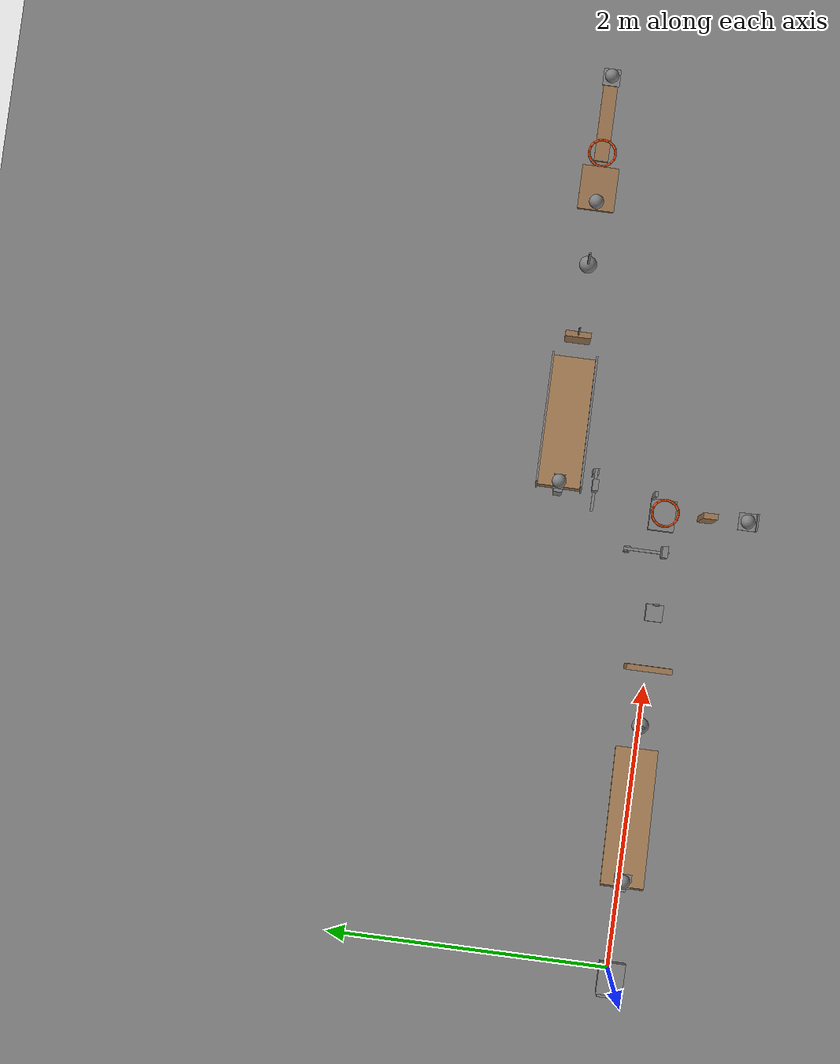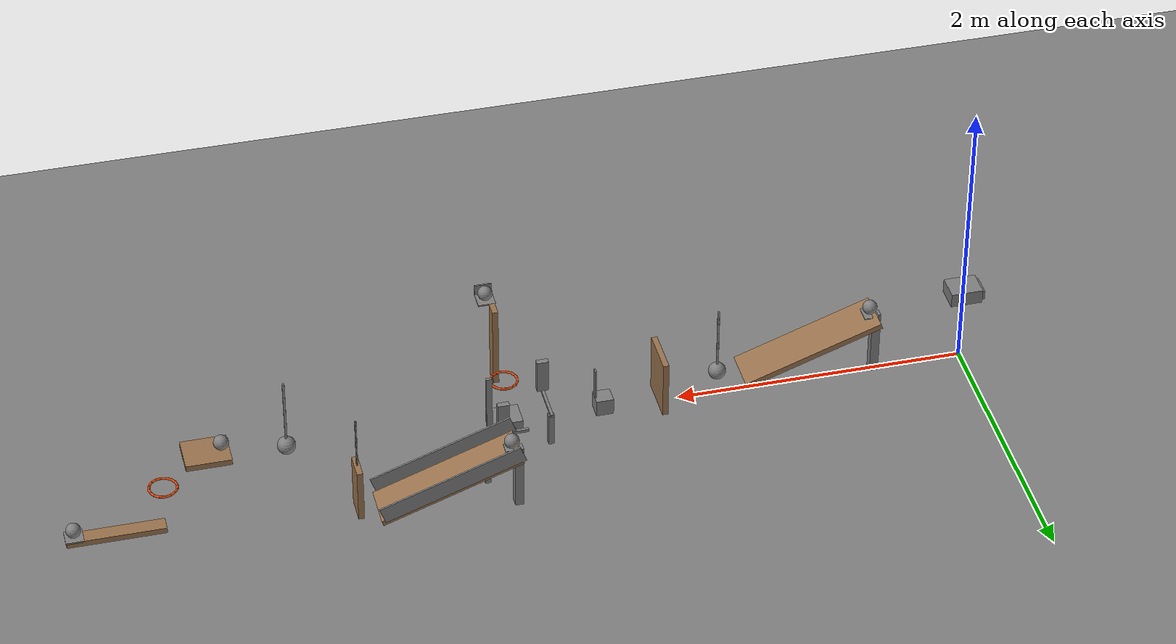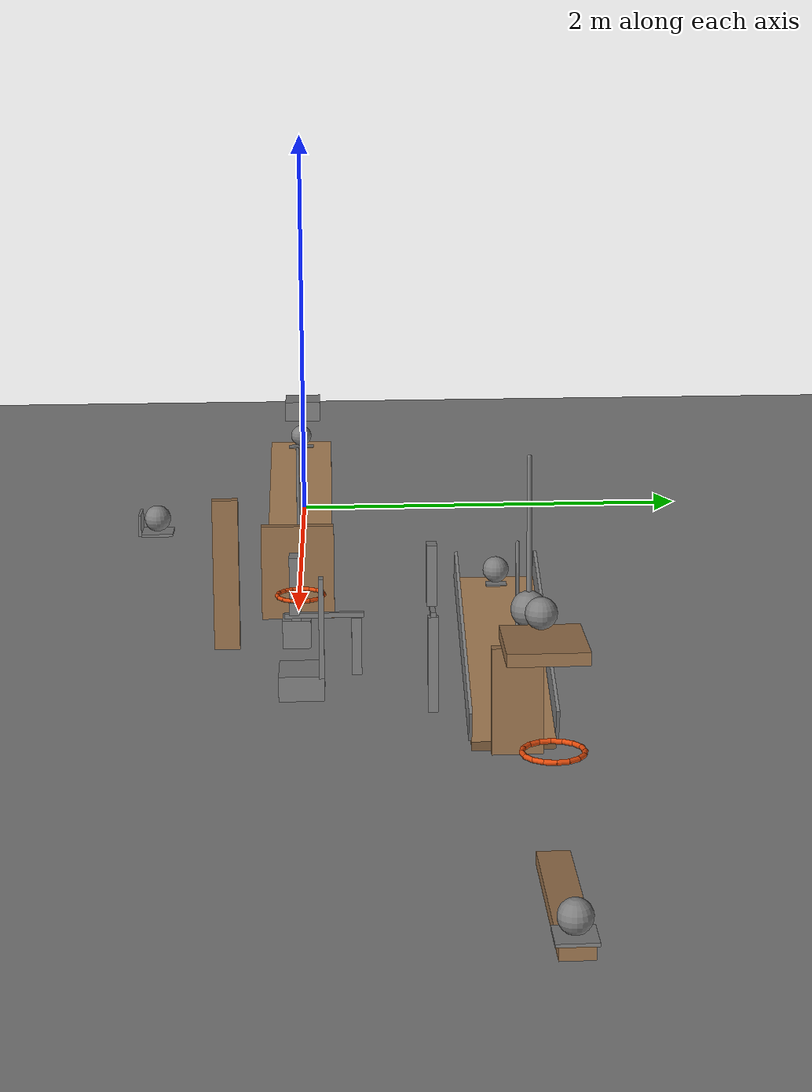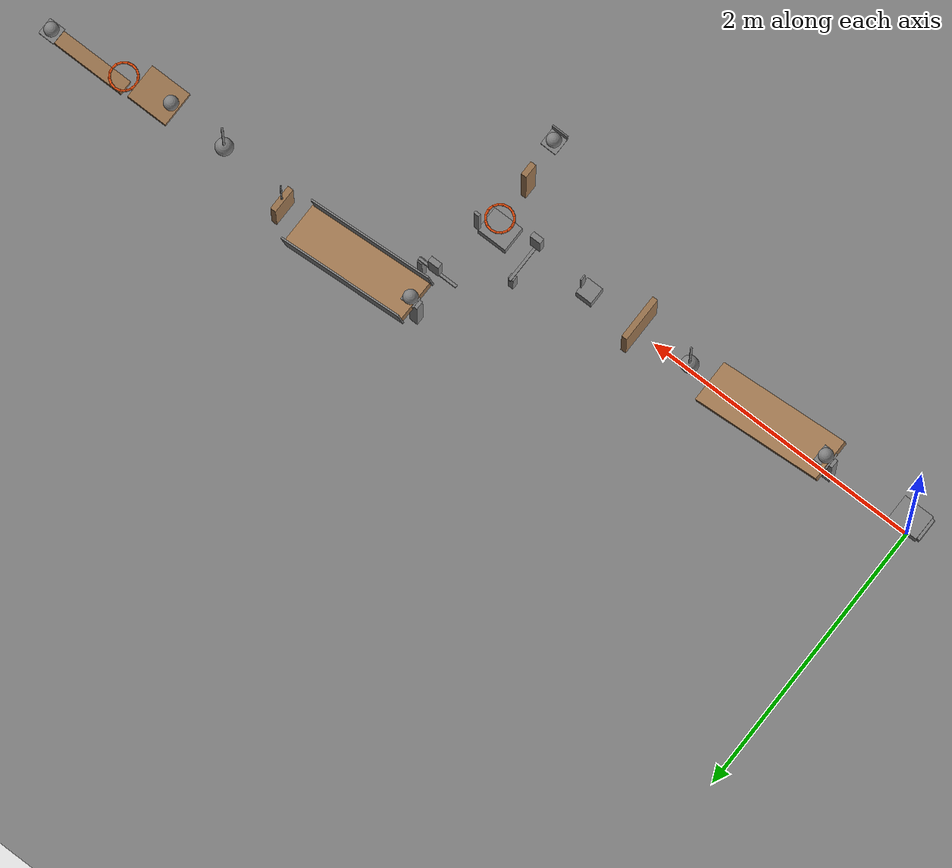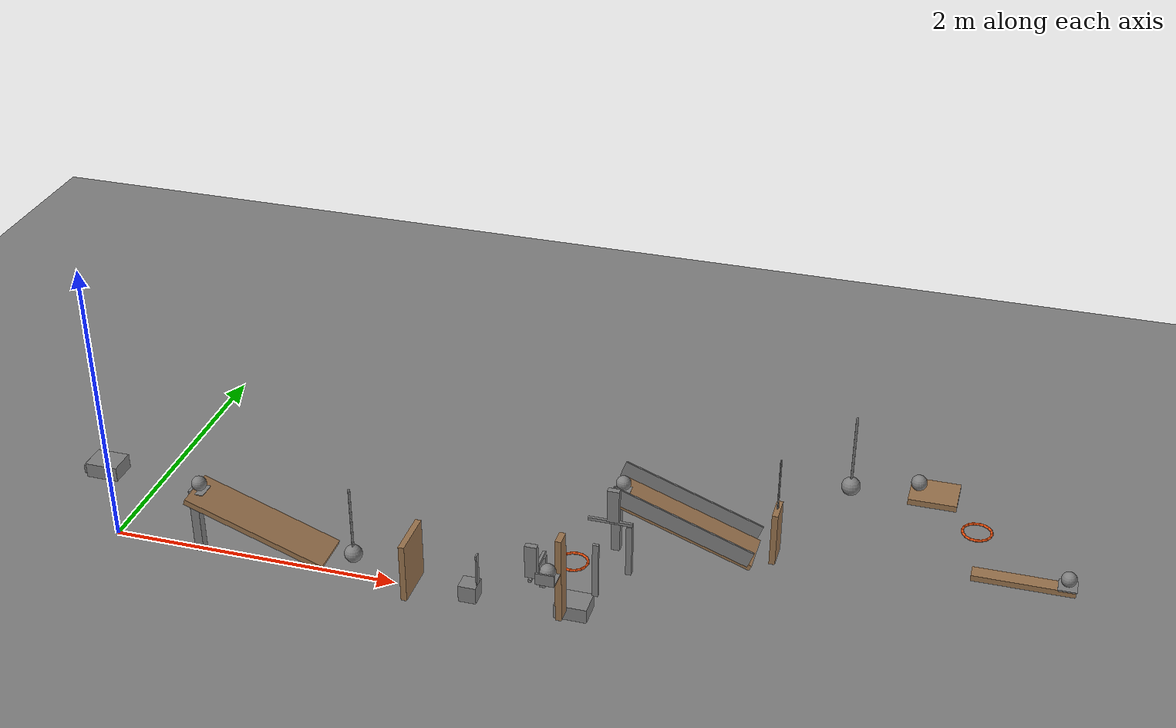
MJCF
<mujoco model="passive_cascade_approximation">
  <compiler angle="radian"/>
  <option timestep="0.002"/>
  <worldbody>
    <geom name="floor" type="plane" size="16 16 0.1" friction="0.68 0 0"/>
    <body name="cart1" pos="0 0 100.549">
      <joint name="cart1_guide" type="hinge" pos="0 0 0" axis="0 1 0" limited="true" range="-0.00610865 0" damping="2000"/>
      <geom name="cart1" type="box" pos="0 0 -100" size="0.11 0.09 0.05" mass="0.5" friction="0.68 0 0" solref="0.01 1"/>
    </body>
    <body name="cart1 spring pusher" pos="-0.12 0 1.54875">
      <joint name="cart1_spring_hinge" type="hinge" pos="0 0 0" axis="0 1 0" limited="true" range="-0.201358 0" stiffness="18" springref="-0.201358" damping="0.04"/>
      <geom name="cart1 spring pusher" type="box" pos="0 0 -1" size="0.01 0.08 0.03" mass="0.005" friction="0.68 0 0" solref="0.01 1"/>
    </body>
    <body name="ramp1">
      <geom name="ramp1" type="box" pos="1.08711 0 0.302216" size="0.5 0.15 0.02" euler="0 0.349066 0" friction="0.68 0 0" solref="0.01 1" rgba="0.6 0.45 0.3 1"/>
    </body>
    <body name="ramp1 support">
      <geom name="ramp1 support" type="box" pos="0.617265 0 0.236613" size="0.03 0.03 0.236613" friction="0.68 0.005 0.0001" solref="0.01 1"/>
    </body>
    <body name="ball1 holding patch">
      <geom name="ball1 holding patch" type="box" pos="0.66 0 0.479664" size="0.05 0.06 0.0025" friction="0.68 0 0" solref="0.01 1"/>
    </body>
    <body name="ball1" pos="0.66 0 0.532164">
      <freejoint/>
      <geom name="ball1" type="sphere" pos="0 0 0" size="0.05" mass="0.2" condim="6" friction="0.68 0 0" solref="0.01 1"/>
    </body>
    <body name="pendulum1" pos="1.7238 0 0.685">
      <joint name="pendulum1_hinge" type="hinge" pos="0 0 0" axis="0 1 0" limited="true" range="-0.698132 0" damping="0.04"/>
      <geom name="pendulum1" type="sphere" pos="0 0 -0.5" size="0.06" mass="0.3" friction="0.68 0 0" solref="0.01 1"/>
      <geom name="pendulum1 rod" type="capsule" size="0.008" fromto="0 0 0 0 0 -0.44" mass="0.05" friction="0.68 0 0" solref="0.01 1"/>
    </body>
    <body name="door1" pos="2.12519 0 0.005">
      <joint name="door1_hinge" type="hinge" pos="0 0 0" axis="0 1 0" limited="true" range="0 1.22173" damping="0.04"/>
      <geom name="door1" type="box" pos="0 0 0.21" size="0.02 0.16 0.21" mass="0.45" friction="0.68 0 0" solref="0.01 1" rgba="0.6 0.45 0.3 1"/>
    </body>
    <body name="block1" pos="2.52019 0 0.06">
      <freejoint/>
      <geom name="block1" type="box" pos="0 0 0" size="0.06 0.06 0.06" mass="0.34" friction="0.68 0 0" solref="0.01 1"/>
      <geom name="block1 striker" type="box" pos="0.055 0 0.175" size="0.005 0.02 0.115" mass="0.01" friction="0.68 0 0" solref="0.01 1"/>
    </body>
    <body name="domino1 platform post">
      <geom name="domino1 platform post" type="box" pos="2.94019 0.25 0.12" size="0.02 0.02 0.12" friction="0.68 0.005 0.0001" solref="0.01 1"/>
    </body>
    <body name="domino1 platform">
      <geom name="domino1 platform" type="box" pos="2.94019 0.12 0.25" size="0.01 0.16 0.01" friction="0.68 0 0" solref="0.01 1"/>
    </body>
    <body name="domino1" pos="2.94019 0 0.38">
      <freejoint/>
      <geom name="domino1" type="box" pos="0 0 0" size="0.04 0.02 0.12" mass="0.25" friction="0.68 0 0" solref="0.01 1"/>
    </body>
    <body name="lever1" pos="3.21019 -0.259808 0.5">
      <joint name="lever1_hinge" type="hinge" pos="0 0 0" axis="1 0 0" limited="true" range="-0.785398 0" damping="0.04"/>
      <geom name="lever1" type="box" pos="0 0 0" size="0.3 0.05 0.02" euler="0 -1.5708 0" mass="0.49" friction="0.68 0 0" solref="0.01 1" rgba="0.6 0.45 0.3 1"/>
      <geom name="lever1 scoop base" type="box" pos="0 -0.259808 0.175" size="0.06 0.06 0.005" mass="0.005" friction="0.68 0 0" solref="0.01 1"/>
      <geom name="lever1 scoop back" type="box" pos="0 -0.324807 0.215" size="0.06 0.005 0.04" mass="0.005" friction="0.68 0 0" solref="0.01 1"/>
    </body>
    <body name="ball2" pos="3.21019 -0.519615 0.73">
      <freejoint/>
      <geom name="ball2" type="sphere" pos="0 0 0" size="0.05" mass="0.2" condim="6" friction="0.68 0 0" solref="0.01 1"/>
    </body>
    <body name="ring1">
      <geom name="ring1_00" type="capsule" size="0.008" fromto="3.30219 0.03 0.41 3.29519 0.0652069 0.41" friction="0.68 0 0" solref="0.01 1" rgba="0.9 0.3 0.05 1"/>
      <geom name="ring1_01" type="capsule" size="0.008" fromto="3.29519 0.0652069 0.41 3.27525 0.0950538 0.41" friction="0.68 0 0" solref="0.01 1" rgba="0.9 0.3 0.05 1"/>
      <geom name="ring1_02" type="capsule" size="0.008" fromto="3.27525 0.0950538 0.41 3.2454 0.114997 0.41" friction="0.68 0 0" solref="0.01 1" rgba="0.9 0.3 0.05 1"/>
      <geom name="ring1_03" type="capsule" size="0.008" fromto="3.2454 0.114997 0.41 3.21019 0.122 0.41" friction="0.68 0 0" solref="0.01 1" rgba="0.9 0.3 0.05 1"/>
      <geom name="ring1_04" type="capsule" size="0.008" fromto="3.21019 0.122 0.41 3.17499 0.114997 0.41" friction="0.68 0 0" solref="0.01 1" rgba="0.9 0.3 0.05 1"/>
      <geom name="ring1_05" type="capsule" size="0.008" fromto="3.17499 0.114997 0.41 3.14514 0.0950538 0.41" friction="0.68 0 0" solref="0.01 1" rgba="0.9 0.3 0.05 1"/>
      <geom name="ring1_06" type="capsule" size="0.008" fromto="3.14514 0.0950538 0.41 3.1252 0.0652069 0.41" friction="0.68 0 0" solref="0.01 1" rgba="0.9 0.3 0.05 1"/>
      <geom name="ring1_07" type="capsule" size="0.008" fromto="3.1252 0.0652069 0.41 3.11819 0.03 0.41" friction="0.68 0 0" solref="0.01 1" rgba="0.9 0.3 0.05 1"/>
      <geom name="ring1_08" type="capsule" size="0.008" fromto="3.11819 0.03 0.41 3.1252 -0.00520688 0.41" friction="0.68 0 0" solref="0.01 1" rgba="0.9 0.3 0.05 1"/>
      <geom name="ring1_09" type="capsule" size="0.008" fromto="3.1252 -0.00520688 0.41 3.14514 -0.0350538 0.41" friction="0.68 0 0" solref="0.01 1" rgba="0.9 0.3 0.05 1"/>
      <geom name="ring1_10" type="capsule" size="0.008" fromto="3.14514 -0.0350538 0.41 3.17499 -0.0549969 0.41" friction="0.68 0 0" solref="0.01 1" rgba="0.9 0.3 0.05 1"/>
      <geom name="ring1_11" type="capsule" size="0.008" fromto="3.17499 -0.0549969 0.41 3.21019 -0.062 0.41" friction="0.68 0 0" solref="0.01 1" rgba="0.9 0.3 0.05 1"/>
      <geom name="ring1_12" type="capsule" size="0.008" fromto="3.21019 -0.062 0.41 3.2454 -0.0549969 0.41" friction="0.68 0 0" solref="0.01 1" rgba="0.9 0.3 0.05 1"/>
      <geom name="ring1_13" type="capsule" size="0.008" fromto="3.2454 -0.0549969 0.41 3.27525 -0.0350538 0.41" friction="0.68 0 0" solref="0.01 1" rgba="0.9 0.3 0.05 1"/>
      <geom name="ring1_14" type="capsule" size="0.008" fromto="3.27525 -0.0350538 0.41 3.29519 -0.00520688 0.41" friction="0.68 0 0" solref="0.01 1" rgba="0.9 0.3 0.05 1"/>
      <geom name="ring1_15" type="capsule" size="0.008" fromto="3.29519 -0.00520688 0.41 3.30219 0.03 0.41" friction="0.68 0 0" solref="0.01 1" rgba="0.9 0.3 0.05 1"/>
    </body>
    <body name="cart2" pos="3.21019 0.03 100.06">
      <joint name="cart2_guide" type="hinge" pos="0 0 0" axis="1 0 0" limited="true" range="0 0.00610865" damping="2000"/>
      <geom name="cart2" type="box" pos="0 0 -100" size="0.11 0.09 0.05" mass="0.49" friction="0.68 0 0" solref="0.01 1"/>
      <geom name="cart2 striker" type="box" pos="0.12 0.08 -99.75" size="0.02 0.01 0.2" mass="0.01" friction="0.68 0 0" solref="0.01 1"/>
    </body>
    <body name="domino2 platform post">
      <geom name="domino2 platform post" type="box" pos="3.44019 0.54 0.19" size="0.02 0.02 0.19" friction="0.68 0.005 0.0001" solref="0.01 1"/>
    </body>
    <body name="domino2 platform">
      <geom name="domino2 platform" type="box" pos="3.31019 0.54 0.39" size="0.15 0.01 0.01" friction="0.68 0 0" solref="0.01 1"/>
    </body>
    <body name="domino2" pos="3.33019 0.54 0.52">
      <freejoint/>
      <geom name="domino2" type="box" pos="0 0 0" size="0.04 0.02 0.12" mass="0.25" friction="0.68 0 0" solref="0.01 1"/>
    </body>
    <body name="ramp2">
      <geom name="ramp2" type="box" pos="3.7573 0.79 0.302216" size="0.5 0.15 0.02" euler="0 0.349066 0" friction="0.68 0 0" solref="0.01 1" rgba="0.6 0.45 0.3 1"/>
    </body>
    <body name="ramp2 support">
      <geom name="ramp2 support" type="box" pos="3.28746 0.79 0.236613" size="0.03 0.03 0.236613" friction="0.68 0.005 0.0001" solref="0.01 1"/>
    </body>
    <body name="ball3 holding patch">
      <geom name="ball3 holding patch" type="box" pos="3.33019 0.79 0.479664" size="0.05 0.04 0.0025" friction="0.68 0 0" solref="0.01 1"/>
    </body>
    <body name="ramp2 left rail">
      <geom name="ramp2 left rail" type="box" pos="3.7573 0.944 0.372216" size="0.5 0.006 0.06" euler="0 0.349066 0" friction="0.68 0 0" solref="0.01 1"/>
    </body>
    <body name="ramp2 right rail">
      <geom name="ramp2 right rail" type="box" pos="3.7573 0.636 0.372216" size="0.5 0.006 0.06" euler="0 0.349066 0" friction="0.68 0 0" solref="0.01 1"/>
    </body>
    <body name="ball3" pos="3.33019 0.79 0.532164">
      <freejoint/>
      <geom name="ball3" type="sphere" pos="0 0 0" size="0.05" mass="0.2" condim="6" friction="0.68 0 0" solref="0.01 1"/>
    </body>
    <body name="flap1" pos="4.35399 0.79 0.15">
      <joint name="flap1_hinge" type="hinge" pos="0 0 0" axis="0 1 0" limited="true" range="0 1.0472" damping="0.04"/>
      <geom name="flap1" type="box" pos="0 0 0.19" size="0.02 0.09 0.19" mass="0.26" friction="0.68 0 0" solref="0.01 1" rgba="0.6 0.45 0.3 1"/>
      <geom name="flap1 striker" type="capsule" size="0.006" fromto="0 0 0.38 0 0 0.75" mass="0.02" friction="0.68 0 0" solref="0.01 1"/>
    </body>
    <body name="pendulum2" pos="4.80399 0.79 1.29401">
      <joint name="pendulum2_hinge" type="hinge" pos="0 0 0" axis="0 1 0" limited="true" range="-0.663225 0" damping="0.04"/>
      <geom name="pendulum2" type="sphere" pos="0 0 -0.5" size="0.06" mass="0.3" friction="0.68 0 0" solref="0.01 1"/>
      <geom name="pendulum2 rod" type="capsule" size="0.008" fromto="0 0 0 0 0 -0.44" mass="0.05" friction="0.68 0 0" solref="0.01 1"/>
    </body>
    <body name="shelf1">
      <geom name="shelf1" type="box" pos="5.32182 0.79 0.83" size="0.15 0.125 0.02" friction="0.68 0 0" solref="0.01 1" rgba="0.6 0.45 0.3 1"/>
    </body>
    <body name="ball4" pos="5.22182 0.79 0.9">
      <freejoint/>
      <geom name="ball4" type="sphere" pos="0 0 0" size="0.05" mass="0.2" condim="6" friction="0.68 0 0" solref="0.01 1"/>
    </body>
    <body name="ring2">
      <geom name="ring2_00" type="capsule" size="0.008" fromto="5.70382 0.79 0.6 5.69682 0.825207 0.6" friction="0.68 0 0" solref="0.01 1" rgba="0.9 0.3 0.05 1"/>
      <geom name="ring2_01" type="capsule" size="0.008" fromto="5.69682 0.825207 0.6 5.67687 0.855054 0.6" friction="0.68 0 0" solref="0.01 1" rgba="0.9 0.3 0.05 1"/>
      <geom name="ring2_02" type="capsule" size="0.008" fromto="5.67687 0.855054 0.6 5.64703 0.874997 0.6" friction="0.68 0 0" solref="0.01 1" rgba="0.9 0.3 0.05 1"/>
      <geom name="ring2_03" type="capsule" size="0.008" fromto="5.64703 0.874997 0.6 5.61182 0.882 0.6" friction="0.68 0 0" solref="0.01 1" rgba="0.9 0.3 0.05 1"/>
      <geom name="ring2_04" type="capsule" size="0.008" fromto="5.61182 0.882 0.6 5.57661 0.874997 0.6" friction="0.68 0 0" solref="0.01 1" rgba="0.9 0.3 0.05 1"/>
      <geom name="ring2_05" type="capsule" size="0.008" fromto="5.57661 0.874997 0.6 5.54677 0.855054 0.6" friction="0.68 0 0" solref="0.01 1" rgba="0.9 0.3 0.05 1"/>
      <geom name="ring2_06" type="capsule" size="0.008" fromto="5.54677 0.855054 0.6 5.52682 0.825207 0.6" friction="0.68 0 0" solref="0.01 1" rgba="0.9 0.3 0.05 1"/>
      <geom name="ring2_07" type="capsule" size="0.008" fromto="5.52682 0.825207 0.6 5.51982 0.79 0.6" friction="0.68 0 0" solref="0.01 1" rgba="0.9 0.3 0.05 1"/>
      <geom name="ring2_08" type="capsule" size="0.008" fromto="5.51982 0.79 0.6 5.52682 0.754793 0.6" friction="0.68 0 0" solref="0.01 1" rgba="0.9 0.3 0.05 1"/>
      <geom name="ring2_09" type="capsule" size="0.008" fromto="5.52682 0.754793 0.6 5.54677 0.724946 0.6" friction="0.68 0 0" solref="0.01 1" rgba="0.9 0.3 0.05 1"/>
      <geom name="ring2_10" type="capsule" size="0.008" fromto="5.54677 0.724946 0.6 5.57661 0.705003 0.6" friction="0.68 0 0" solref="0.01 1" rgba="0.9 0.3 0.05 1"/>
      <geom name="ring2_11" type="capsule" size="0.008" fromto="5.57661 0.705003 0.6 5.61182 0.698 0.6" friction="0.68 0 0" solref="0.01 1" rgba="0.9 0.3 0.05 1"/>
      <geom name="ring2_12" type="capsule" size="0.008" fromto="5.61182 0.698 0.6 5.64703 0.705003 0.6" friction="0.68 0 0" solref="0.01 1" rgba="0.9 0.3 0.05 1"/>
      <geom name="ring2_13" type="capsule" size="0.008" fromto="5.64703 0.705003 0.6 5.67687 0.724946 0.6" friction="0.68 0 0" solref="0.01 1" rgba="0.9 0.3 0.05 1"/>
      <geom name="ring2_14" type="capsule" size="0.008" fromto="5.67687 0.724946 0.6 5.69682 0.754793 0.6" friction="0.68 0 0" solref="0.01 1" rgba="0.9 0.3 0.05 1"/>
      <geom name="ring2_15" type="capsule" size="0.008" fromto="5.69682 0.754793 0.6 5.70382 0.79 0.6" friction="0.68 0 0" solref="0.01 1" rgba="0.9 0.3 0.05 1"/>
    </body>
    <body name="seesaw1" pos="5.93682 0.79 0.28">
      <joint name="seesaw1_hinge" type="hinge" pos="0 0 0" axis="0 1 0" limited="true" range="-0.733038 0" damping="0.04"/>
      <geom name="seesaw1" type="box" pos="0 0 0" size="0.325 0.05 0.02" mass="0.54" friction="0.68 0 0" solref="0.01 1" rgba="0.6 0.45 0.3 1"/>
      <geom name="seesaw1 launch pad" type="box" pos="0.27 0 0.025" size="0.06 0.06 0.005" mass="0.01" friction="0.68 0 0" solref="0.01 1"/>
    </body>
    <body name="ball5" pos="6.20682 0.79 0.36">
      <freejoint/>
      <geom name="ball5" type="sphere" pos="0 0 0" size="0.05" mass="0.2" condim="6" friction="0.68 0 0" solref="0.01 1"/>
    </body>
  </worldbody>
  <keyframe>
    <key name="start" qpos="0 0 0.66 0 0.532164 1 0 0 0 0 0 2.52019 0 0.06 1 0 0 0 2.94019 0 0.38 1 0 0 0 0 3.21019 -0.519615 0.73 1 0 0 0 0 3.33019 0.54 0.52 1 0 0 0 3.33019 0.79 0.532164 1 0 0 0 0 0 5.22182 0.79 0.9 1 0 0 0 0 6.20682 0.79 0.36 1 0 0 0" qvel="0 0 0 0 0 0 0 0 0 0 0 0 0 0 0 0 0 0 0 0 0 0 0 0 0 0 0 0 0 0 0 0 0 0 0 0 0 0 0 0 0 0 0 0 0 0 0 0 0 0 0 0 0 0 0 0 0"/>
  </keyframe>
</mujoco>
